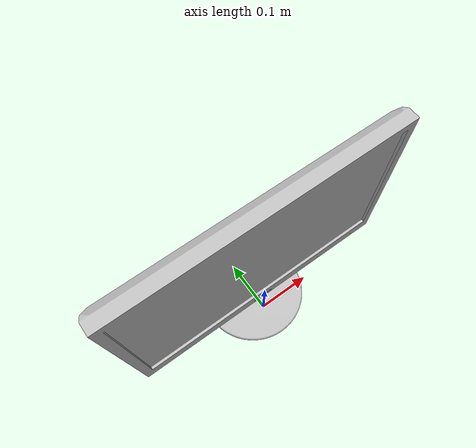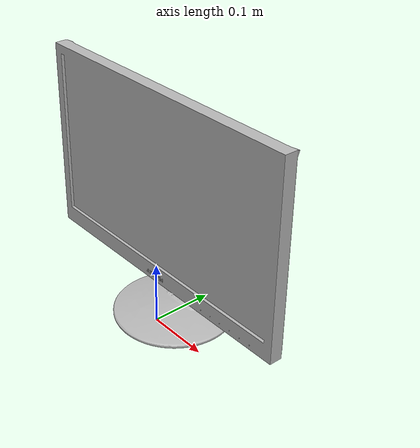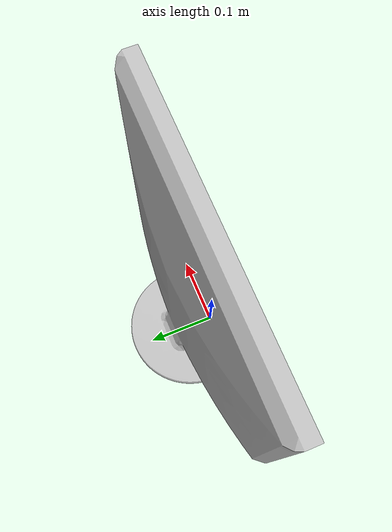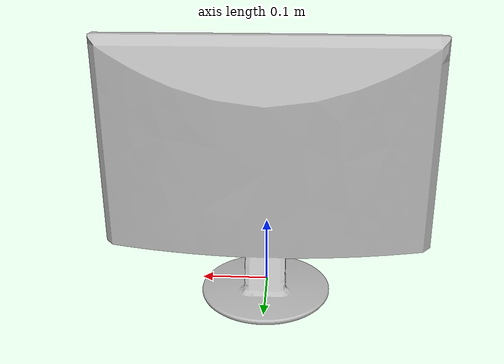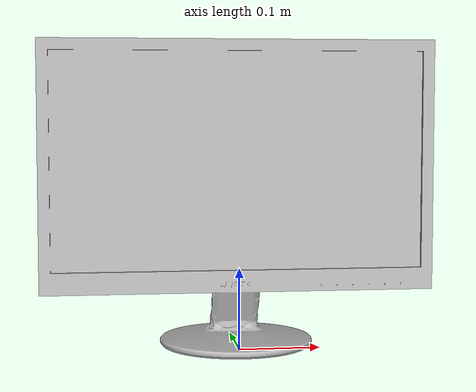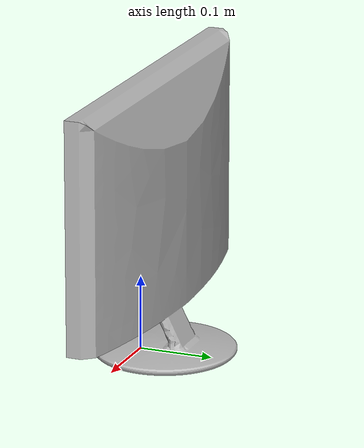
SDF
<?xml version="1.0" ?>
<sdf version="1.4">
  <model name="monitor">
    <link name="monitor_link">
      <inertial>
        <mass>2</mass>
      </inertial>
      <collision name="collision">
        <geometry>
          <mesh>
            <uri>model://monitor/meshes/collision/monitor_collision.stl</uri>
          </mesh>
        </geometry>
      </collision>
      <visual name="visual">
        <geometry>
          <mesh>
            <uri>model://monitor/meshes/monitor.dae</uri>
          </mesh>
        </geometry>
      </visual>
    </link>
  </model>
</sdf>
